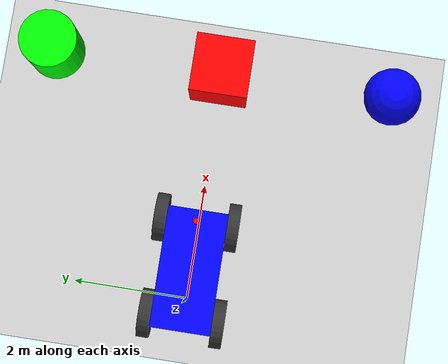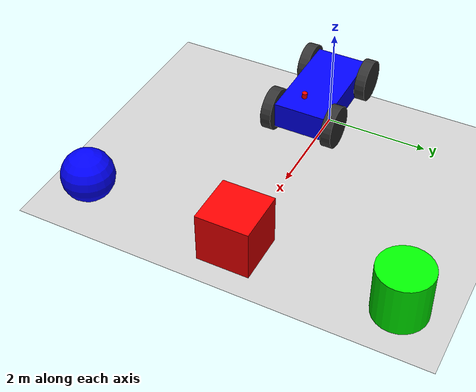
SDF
<?xml version="1.0" ?>
<sdf version="1.8">
    <world name="car_world">
        <physics name="1ms" type="ignored">
            <max_step_size>0.001</max_step_size>
            <real_time_factor>1.0</real_time_factor>
        </physics>

        <plugin filename="gz-sim-physics-system" name="gz::sim::systems::Physics" />
        <plugin filename="gz-sim-user-commands-system" name="gz::sim::systems::UserCommands" />
        <plugin filename="gz-sim-scene-broadcaster-system" name="gz::sim::systems::SceneBroadcaster" />
        <plugin filename="gz-sim-sensors-system" name="gz::sim::systems::Sensors">
            <render_engine>ogre2</render_engine>
        </plugin>

        <plugin filename="gz-sim-triggered-publisher-system" name="gz::sim::systems::TriggeredPublisher">
            <input type="gz.msgs.Int32" topic="/keyboard/keypress">
                <match field="data">16777235</match>
            </input>
            <output type="gz.msgs.Twist" topic="/cmd_vel">
                linear: {x: 1.5}, angular: {z: 0.0}
            </output>
        </plugin>
        <plugin filename="gz-sim-triggered-publisher-system" name="gz::sim::systems::TriggeredPublisher">
            <input type="gz.msgs.Int32" topic="/keyboard/keypress">
                <match field="data">16777237</match>
            </input>
            <output type="gz.msgs.Twist" topic="/cmd_vel">
                linear: {x: -1.5}, angular: {z: 0.0}
            </output>
        </plugin>
        <plugin filename="gz-sim-triggered-publisher-system" name="gz::sim::systems::TriggeredPublisher">
            <input type="gz.msgs.Int32" topic="/keyboard/keypress">
                <match field="data">16777234</match>
            </input>
            <output type="gz.msgs.Twist" topic="/cmd_vel">
                linear: {x: 0.0}, angular: {z: 2.0}
            </output>
        </plugin>
        <plugin filename="gz-sim-triggered-publisher-system" name="gz::sim::systems::TriggeredPublisher">
            <input type="gz.msgs.Int32" topic="/keyboard/keypress">
                <match field="data">16777236</match>
            </input>
            <output type="gz.msgs.Twist" topic="/cmd_vel">
                linear: {x: 0.0}, angular: {z: -2.0}
            </output>
        </plugin>
        <plugin filename="gz-sim-triggered-publisher-system" name="gz::sim::systems::TriggeredPublisher">
            <input type="gz.msgs.Int32" topic="/keyboard/keypress">
                <match field="data">32</match>
            </input>
            <output type="gz.msgs.Twist" topic="/cmd_vel">
                linear: {x: 0.0}, angular: {z: 0.0}
            </output>
        </plugin>

        <light type="directional" name="sun">
            <cast_shadows>true</cast_shadows>
            <pose>0 0 10 0 0 0</pose>
            <diffuse>0.8 0.8 0.8 1</diffuse>
            <specular>0.2 0.2 0.2 1</specular>
            <direction>-0.5 0.1 -0.9</direction>
        </light>

        <model name="ground_plane">
            <static>true</static>
            <link name="link">
                <collision name="collision">
                    <geometry><plane><normal>0 0 1</normal><size>100 100</size></plane></geometry>
                </collision>
                <visual name="visual">
                    <geometry><plane><normal>0 0 1</normal><size>100 100</size></plane></geometry>
                    <material><ambient>0.8 0.8 0.8 1</ambient><diffuse>0.8 0.8 0.8 1</diffuse></material>
                </visual>
            </link>
        </model>

        <model name='box_obstacle'>
            <pose>4 0 0.5 0 0 0</pose>
            <link name='box_link'>
                <collision name='col'><geometry><box><size>1 1 1</size></box></geometry></collision>
                <visual name='vis'><geometry><box><size>1 1 1</size></box></geometry>
                    <material><ambient>1 0 0 1</ambient><diffuse>1 0 0 1</diffuse></material>
                </visual>
            </link>
        </model>

        <model name='cylinder_obstacle'>
            <pose>4 3 0.5 0 0 0</pose>
            <link name='cyl_link'>
                <collision name='col'><geometry><cylinder><radius>0.5</radius><length>1.0</length></cylinder></geometry></collision>
                <visual name='vis'><geometry><cylinder><radius>0.5</radius><length>1.0</length></cylinder></geometry>
                    <material><ambient>0 1 0 1</ambient><diffuse>0 1 0 1</diffuse></material>
                </visual>
            </link>
        </model>

        <model name='sphere_obstacle'>
            <pose>4 -3 0.5 0 0 0</pose>
            <link name='sph_link'>
                <collision name='col'><geometry><sphere><radius>0.5</radius></sphere></geometry></collision>
                <visual name='vis'><geometry><sphere><radius>0.5</radius></sphere></geometry>
                    <material><ambient>0 0 1 1</ambient><diffuse>0 0 1 1</diffuse></material>
                </visual>
            </link>
        </model>

        <model name='robot_4wd' canonical_link='chassis'>
            <pose relative_to='world'>0 0 0.6 0 0 0</pose>

            <link name='chassis'>
                <pose relative_to='__model__'>0.5 0 0.4 0 0 0</pose>
                <inertial>
                    <mass>1.14</mass>
                    <inertia><ixx>0.1</ixx><iyy>0.4</iyy><izz>0.5</izz></inertia>
                </inertial>
                <visual name='visual'>
                    <geometry><box><size>2.0 1.0 0.5</size></box></geometry>
                    <material><ambient>0.0 0.0 1.0 1</ambient><diffuse>0.0 0.0 1.0 1</diffuse></material>
                </visual>
                <collision name='collision'>
                    <geometry><box><size>2.0 1.0 0.5</size></box></geometry>
                </collision>
            </link>

            <link name='left_front_wheel'>
                <pose relative_to="chassis">0.8 0.6 0 -1.5707 0 0</pose>
                <inertial><mass>1</mass><inertia><ixx>0.04</ixx><iyy>0.04</iyy><izz>0.08</izz></inertia></inertial>
                <visual name='visual'><geometry><cylinder><radius>0.4</radius><length>0.2</length></cylinder></geometry>
                <material><ambient>0.2 0.2 0.2 1</ambient><diffuse>0.2 0.2 0.2 1</diffuse></material></visual>
                <collision name='collision'><geometry><cylinder><radius>0.4</radius><length>0.2</length></cylinder></geometry></collision>
            </link>
            <link name='left_rear_wheel'>
                <pose relative_to="chassis">-0.8 0.6 0 -1.5707 0 0</pose>
                <inertial><mass>1</mass><inertia><ixx>0.04</ixx><iyy>0.04</iyy><izz>0.08</izz></inertia></inertial>
                <visual name='visual'><geometry><cylinder><radius>0.4</radius><length>0.2</length></cylinder></geometry>
                <material><ambient>0.2 0.2 0.2 1</ambient><diffuse>0.2 0.2 0.2 1</diffuse></material></visual>
                <collision name='collision'><geometry><cylinder><radius>0.4</radius><length>0.2</length></cylinder></geometry></collision>
            </link>
            <link name='right_front_wheel'>
                <pose relative_to="chassis">0.8 -0.6 0 -1.5707 0 0</pose>
                <inertial><mass>1</mass><inertia><ixx>0.04</ixx><iyy>0.04</iyy><izz>0.08</izz></inertia></inertial>
                <visual name='visual'><geometry><cylinder><radius>0.4</radius><length>0.2</length></cylinder></geometry>
                <material><ambient>0.2 0.2 0.2 1</ambient><diffuse>0.2 0.2 0.2 1</diffuse></material></visual>
                <collision name='collision'><geometry><cylinder><radius>0.4</radius><length>0.2</length></cylinder></geometry></collision>
            </link>
            <link name='right_rear_wheel'>
                <pose relative_to="chassis">-0.8 -0.6 0 -1.5707 0 0</pose>
                <inertial><mass>1</mass><inertia><ixx>0.04</ixx><iyy>0.04</iyy><izz>0.08</izz></inertia></inertial>
                <visual name='visual'><geometry><cylinder><radius>0.4</radius><length>0.2</length></cylinder></geometry>
                <material><ambient>0.2 0.2 0.2 1</ambient><diffuse>0.2 0.2 0.2 1</diffuse></material></visual>
                <collision name='collision'><geometry><cylinder><radius>0.4</radius><length>0.2</length></cylinder></geometry></collision>
            </link>

            <joint name='left_front_wheel_joint' type='revolute'><parent>chassis</parent><child>left_front_wheel</child><axis><xyz>0 0 1</xyz></axis></joint>
            <joint name='left_rear_wheel_joint' type='revolute'><parent>chassis</parent><child>left_rear_wheel</child><axis><xyz>0 0 1</xyz></axis></joint>
            <joint name='right_front_wheel_joint' type='revolute'><parent>chassis</parent><child>right_front_wheel</child><axis><xyz>0 0 1</xyz></axis></joint>
            <joint name='right_rear_wheel_joint' type='revolute'><parent>chassis</parent><child>right_rear_wheel</child><axis><xyz>0 0 1</xyz></axis></joint>

            <link name='lidar_link'>
                <pose relative_to='chassis'>0.8 0 0.5 0 0 0</pose>
                <inertial><mass>0.1</mass><inertia><ixx>0.000166667</ixx><iyy>0.000166667</iyy><izz>0.000166667</izz></inertia></inertial>
                <visual name='visual'><geometry><cylinder><radius>0.05</radius><length>0.1</length></cylinder></geometry>
                <material><ambient>1 0 0 1</ambient><diffuse>1 0 0 1</diffuse></material></visual>
                <sensor name='gpu_lidar' type='gpu_lidar'>
                    <topic>lidar</topic>
                    <update_rate>10</update_rate>
                    <lidar>
                        <scan><horizontal><samples>640</samples><resolution>1</resolution>
                        <min_angle>-1.396263</min_angle><max_angle>1.396263</max_angle></horizontal></scan>
                        <range><min>0.08</min><max>10.0</max></range>
                    </lidar>
                    <visualize>true</visualize>
                </sensor>
            </link>
            <joint name='lidar_joint' type='fixed'><parent>chassis</parent><child>lidar_link</child></joint>

            <plugin filename="gz-sim-diff-drive-system" name="gz::sim::systems::DiffDrive">
                <left_joint>left_front_wheel_joint</left_joint>
                <left_joint>left_rear_wheel_joint</left_joint>
                <right_joint>right_front_wheel_joint</right_joint>
                <right_joint>right_rear_wheel_joint</right_joint>
                <wheel_separation>1.2</wheel_separation>
                <wheel_radius>0.4</wheel_radius>
                <topic>cmd_vel</topic>
                <max_linear_acceleration>10</max_linear_acceleration>
                <max_angular_acceleration>20</max_angular_acceleration>
            </plugin>
        </model>
    </world>
</sdf>
